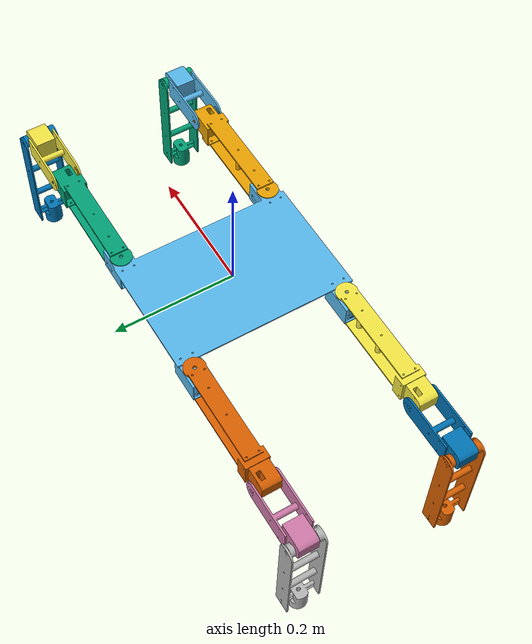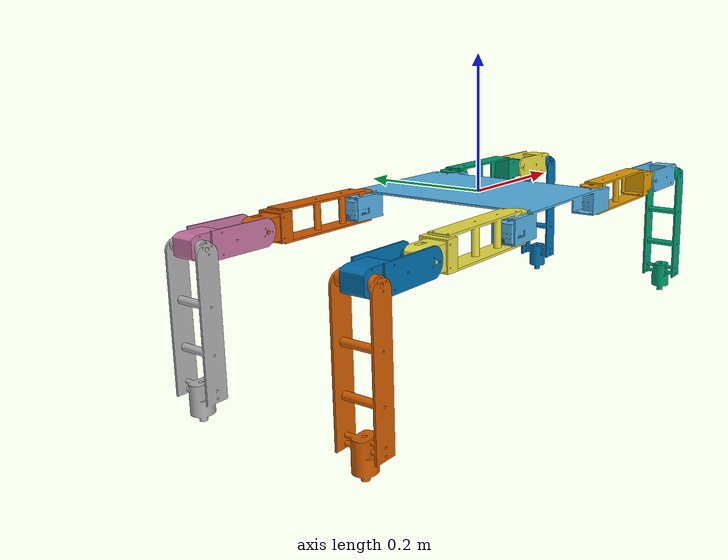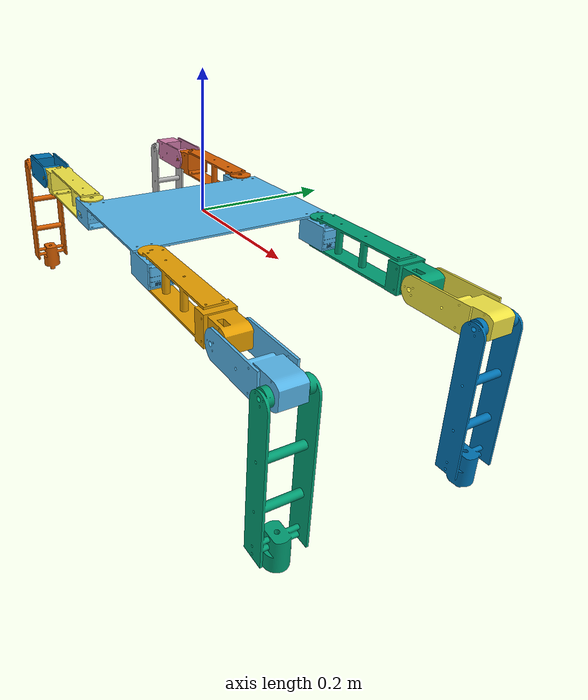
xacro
<?xml version="1.0"?>
<robot name="mr2" xmlns:xacro="http://www.ros.org/wiki/xacro">

  <xacro:include filename="$(find mr2_description)/urdf/base/base.urdf.xacro"/>
  <xacro:include filename="$(find mr2_description)/urdf/legs/leg.urdf.xacro"/>
  <xacro:include filename="$(find mr2_description)/urdf/sensors/imu/imu.urdf.xacro"/>

  <!-- =============== Links & Joints =============== -->

  <!-- Base -->
  <link name="base_footprint"/>
  <xacro:base parent="base_footprint">
    <origin xyz="0 0 0"/>
  </xacro:base>

  <!-- Legs -->
  <!-- Front right leg -->
  <xacro:leg prefix="fr" parent="base_link">
    <origin rpy="${M_PI} 0 0" xyz="0.114 0.13 0"/>
  </xacro:leg>

  <!-- Front left leg -->
  <xacro:leg prefix="fl" parent="base_link">
    <origin rpy="${M_PI} 0 ${M_PI}" xyz="-0.114 0.13 0"/>
  </xacro:leg>

  <!-- Rear right leg -->
  <xacro:leg prefix="rr" parent="base_link">
    <origin rpy="${M_PI} 0 0" xyz="0.114 -0.13 0"/>
  </xacro:leg>

  <!-- Rear left leg -->
  <xacro:leg prefix="rl" parent="base_link">
    <origin rpy="${M_PI} 0 ${M_PI}" xyz="-0.114 -0.13 0"/>
  </xacro:leg>

  <!-- Sensors -->
  <!-- IMU -->
  <xacro:imu id_num="1" parent="base_link">
    <origin xyz="0 0 0" rpy="0 0 0"/>
  </xacro:imu>

  <!-- =============== Transmission ===============-->

  <xacro:legs_trans prefix="fr"/>
  <xacro:legs_trans prefix="fl"/>
  <xacro:legs_trans prefix="rr"/>
  <xacro:legs_trans prefix="rl"/>

  <!-- =============== Gazebo ===============-->

  <gazebo>
    <plugin name="gazebo_ros_control" filename="libgazebo_ros_control.so">
      <robotNamespace>mr2</robotNamespace>
    </plugin>
  </gazebo>

  <!-- Base -->
  <xacro:base_gazebo/>

  <!-- Legs -->
  <xacro:legs_gazebo prefix="fr"/>
  <xacro:legs_gazebo prefix="fl"/>
  <xacro:legs_gazebo prefix="rr"/>
  <xacro:legs_gazebo prefix="rl"/>

  <!-- IMU -->
  <xacro:imu_gazebo id_num="1"/>
</robot>

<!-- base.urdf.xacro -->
<robot xmlns:xacro="http://www.ros.org/wiki/xacro">

  <xacro:include filename="$(find mr2_description)/urdf/base/base.gazebo.xacro"/>

  <xacro:macro name="base" params="parent *joint_origin">
    <joint name="base_link_joint" type="fixed">
      <xacro:insert_block name="joint_origin"/>
      <parent link="${parent}"/>
      <child link="base_link"/>
    </joint>

    <link name="base_link">
      <visual>
        <geometry>
          <mesh filename="package://mr2_description/meshes/base.STL"/>
        </geometry>
      </visual>
      <collision>
        <geometry>
          <mesh filename="package://mr2_description/meshes/base.STL"/>
        </geometry>
      </collision>
      <inertial>
        <mass value="0.56"/>
        <inertia ixx="0.01" ixy="0" ixz="0" iyy="0.01" iyz="0" izz="0.01"/>
      </inertial>
    </link>
  </xacro:macro>

</robot>

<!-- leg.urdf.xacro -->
<robot xmlns:xacro="http://www.ros.org/wiki/xacro">

  <xacro:include filename="$(find mr2_description)/urdf/legs/leg1.urdf.xacro"/>
  <xacro:include filename="$(find mr2_description)/urdf/legs/leg2.urdf.xacro"/>
  <xacro:include filename="$(find mr2_description)/urdf/legs/leg3.urdf.xacro"/>
  <xacro:include filename="$(find mr2_description)/urdf/legs/leg.gazebo.xacro"/>
  <xacro:include filename="$(find mr2_description)/urdf/legs/leg.transmission.xacro"/>

  <xacro:macro name="leg" params="prefix parent *joint_origin">
    <xacro:leg1 prefix="${prefix}" parent="${parent}">
      <xacro:insert_block name="joint_origin"/>
    </xacro:leg1>
    <xacro:leg2 prefix="${prefix}" parent="${prefix}_leg1_link">
      <origin rpy="0 0 0" xyz="0.199 0.0215 0.0152"/>
    </xacro:leg2>
    <xacro:leg3 prefix="${prefix}" parent="${prefix}_leg2_link">
      <origin rpy="0 0 0" xyz="0.1 0 0"/>
    </xacro:leg3>
  </xacro:macro>

</robot>

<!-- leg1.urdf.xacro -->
<robot xmlns:xacro="http://www.ros.org/wiki/xacro">

  <xacro:include filename="$(find mr2_description)/urdf/servo_motors/servo_motors.xacro"/>

  <xacro:macro name="leg1" params="prefix parent *joint_origin">
    <joint name="${prefix}_leg1_joint" type="revolute">
      <xacro:insert_block name="joint_origin"/>
      <axis xyz="0 0 1"/>
      <KRS6003R2HVICS_limit/>
      <parent link="${parent}"/>
      <child link="${prefix}_leg1_link"/>
    </joint>

    <link name="${prefix}_leg1_link">
      <visual>
        <origin rpy="${M_PI} 0 0" xyz="0 0 0"/>
        <geometry>
          <mesh filename="package://mr2_description/meshes/leg1.STL"/>
        </geometry>
      </visual>
      <collision>
        <origin rpy="${M_PI} 0 0" xyz="0 0 0"/>
        <geometry>
          <mesh filename="package://mr2_description/meshes/leg1.STL"/>
        </geometry>
      </collision>
      <inertial>
        <origin rpy="${M_PI} 0 0" xyz="0 0 0"/>
        <mass value="0.11"/>
        <inertia ixx="0.002" ixy="0" ixz="0" iyy="0.0004" iyz="0" izz="0.003"/>
      </inertial>
    </link>
  </xacro:macro>

</robot>

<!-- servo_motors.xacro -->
<robot xmlns:xacro="http://www.ros.org/wiki/xacro">

  <xacro:include filename="$(find mr2_description)/urdf/common.xacro"/>

  <!-- KRS-3301 ICS -->
  <xacro:macro name="KRS3301ICS_limit" params="lower_limit:=${-(3*M_PI)/4} upper_limit:=${(3*M_PI)/4}">
    <limit lower="${lower_limit}" upper="${upper_limit}" effort="${6.0*gravity*0.01}" velocity="${(M_PI/3)/0.14}"/>
  </xacro:macro>

  <!-- KRS-3302 ICS -->
  <xacro:macro name="KRS3302ICS_limit" params="lower_limit:=${-(3*M_PI)/4} upper_limit:=${(3*M_PI)/4}">
    <limit lower="${lower_limit}" upper="${upper_limit}" effort="${6.7*gravity*0.01}" velocity="${(M_PI/3)/0.16}"/>
  </xacro:macro>

  <!-- KRS-3304R2 ICS -->
  <xacro:macro name="KRS3304R2ICS_limit" params="lower_limit:=${-(3*M_PI)/4} upper_limit:=${(3*M_PI)/4}">
    <limit lower="${lower_limit}" upper="${upper_limit}" effort="${13.9*gravity*0.01}" velocity="${(M_PI/3)/0.11}"/>
  </xacro:macro>

  <!-- KRS-4034HV ICS -->
  <xacro:macro name="KRS4034HVICS_limit" params="lower_limit:=${-(3*M_PI)/4} upper_limit:=${(3*M_PI)/4}">
    <limit lower="${lower_limit}" upper="${upper_limit}" effort="${41.7*gravity*0.01}" velocity="${(M_PI/3)/0.17}"/>
  </xacro:macro>

  <!-- KRS-6003R2HV ICS -->
  <xacro:macro name="KRS6003R2HVICS_limit" params="lower_limit:=${-(3*M_PI)/4} upper_limit:=${(3*M_PI)/4}">
    <limit lower="${lower_limit}" upper="${upper_limit}" effort="${67*gravity*0.01}" velocity="${(M_PI/3)/0.22}"/>
  </xacro:macro>

  <!-- imaginary servo for test -->
  <xacro:macro name="servo_limit" params="lower_limit:=${-(3*M_PI)/4} upper_limit:=${(3*M_PI)/4}">
    <limit lower="${lower_limit}" upper="${upper_limit}" effort="1000" velocity="${(M_PI/3)/0.22}"/>
  </xacro:macro>

</robot>

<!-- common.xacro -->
<robot xmlns:xacro="http://www.ros.org/wiki/xacro">
  <xacro:property name="M_PI" value="3.14159274"/>
  <xacro:property name="gravity" value="9.80665"/>

  <xacro:macro name="box_inertial" params="mass height width depth">
    <mass value="${mass}"/>
    <inertia ixx="${(mass*(width*width + depth*depth))/12}" ixy="0" ixz="0"
             iyy="${(mass*(height*height + depth*depth))/12}" iyz="0"
             izz="${(mass*(height*height + width*width))/12}"/>
  </xacro:macro>
</robot>

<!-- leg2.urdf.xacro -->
<robot xmlns:xacro="http://www.ros.org/wiki/xacro">

  <xacro:include filename="$(find spider_robot_description)/urdf/servo_motors/servo_motors.xacro"/>

  <xacro:macro name="leg2" params="prefix parent *joint_origin">
    <joint name="${prefix}_leg2_joint" type="revolute">
      <xacro:insert_block name="joint_origin"/>
      <axis xyz="0 1 0"/>
      <KRS6003R2HVICS_limit/>
      <parent link="${parent}"/>
      <child link="${prefix}_leg2_link"/>
    </joint>

    <link name="${prefix}_leg2_link">
      <visual>
        <origin rpy="0 0 0" xyz="0 0 0"/>
        <geometry>
          <mesh filename="package://mr2_description/meshes/leg2.STL"/>
        </geometry>
      </visual>
      <collision>
        <origin rpy="0 0 0" xyz="0 0 0"/>
        <geometry>
          <mesh filename="package://mr2_description/meshes/leg2.STL"/>
        </geometry>
      </collision>
      <inertial>
        <origin rpy="0 0 0" xyz="0 0 0"/>
        <mass value="0.08"/>
        <inertia ixx="0.004" ixy="0" ixz="0" iyy="0.002" iyz="0" izz="0.003"/>
      </inertial>
    </link>
  </xacro:macro>

</robot>

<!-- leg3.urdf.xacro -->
<robot xmlns:xacro="http://www.ros.org/wiki/xacro">

  <xacro:include filename="$(find mr2_description)/urdf/servo_motors/servo_motors.xacro"/>

  <xacro:macro name="leg3" params="prefix parent *joint_origin">
    <joint name="${prefix}_leg3_joint" type="revolute">
      <xacro:insert_block name="joint_origin"/>
      <axis xyz="0 1 0"/>
      <KRS6003R2HVICS_limit/>
      <parent link="${parent}"/>
      <child link="${prefix}_leg3_link"/>
    </joint>

    <link name="${prefix}_leg3_link">
      <visual>
        <origin rpy="${M_PI} 0 ${M_PI}" xyz="0 0 0"/>
        <geometry>
          <mesh filename="package://mr2_description/meshes/leg3.STL"/>
        </geometry>
      </visual>
      <collision>
        <origin rpy="${M_PI} 0 ${M_PI}" xyz="0 0 0"/>
        <geometry>
          <mesh filename="package://mr2_description/meshes/leg3.STL"/>
        </geometry>
      </collision>
      <inertial>
        <origin rpy="${M_PI} 0 ${M_PI}" xyz="0 0 0"/>
        <mass value="0.4"/>
        <inertia ixx="0.005" ixy="0" ixz="0" iyy="0.007" iyz="0" izz="0.007"/>
      </inertial>
    </link>
  </xacro:macro>

</robot>

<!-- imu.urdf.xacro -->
<robot xmlns:xacro="http://www.ros.org/wiki/xacro">

  <xacro:include filename="$(find omnibot3_description)/urdf/common.xacro"/>
  <xacro:include filename="$(find omnibot3_description)/urdf/sensors/imu/imu.gazebo.xacro"/>

  <xacro:macro name="imu" params="id_num parent *joint_origin">
    <joint name="imu${id_num}_joint" type="fixed">
      <insert_block name="joint_origin"/>
      <parent link="${parent}"/>
      <child link="imu${id_num}_link"/>
    </joint>

    <link name="imu${id_num}_link">
      <visual>
        <geometry>
          <box size="0.014 0.010 0.004"/>
        </geometry>
      </visual>
      <collision>
        <geometry>
          <box size="0.014 0.010 0.004"/>
        </geometry>
      </collision>
      <inertial>
        <box_inertial mass="0.01" height="0.014" width="0.010" depth="0.004"/>
      </inertial>
    </link>
  </xacro:macro>

</robot>
